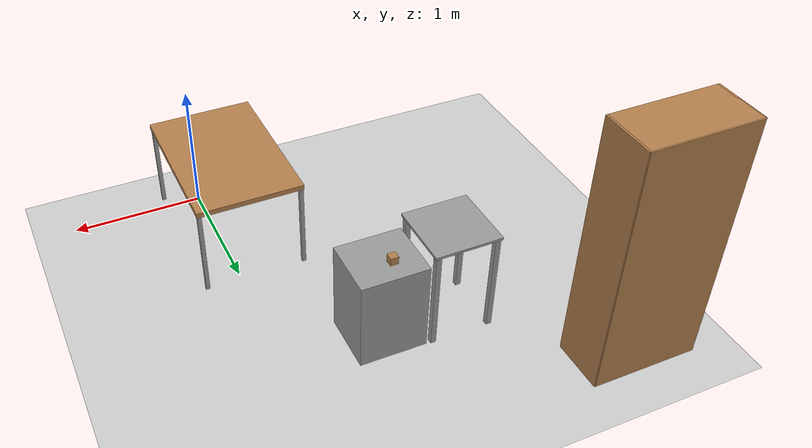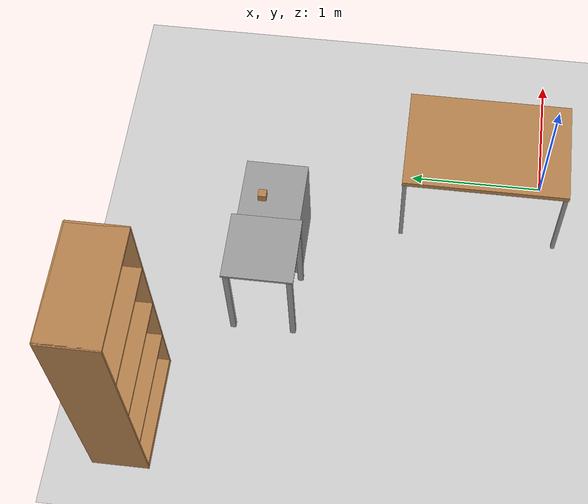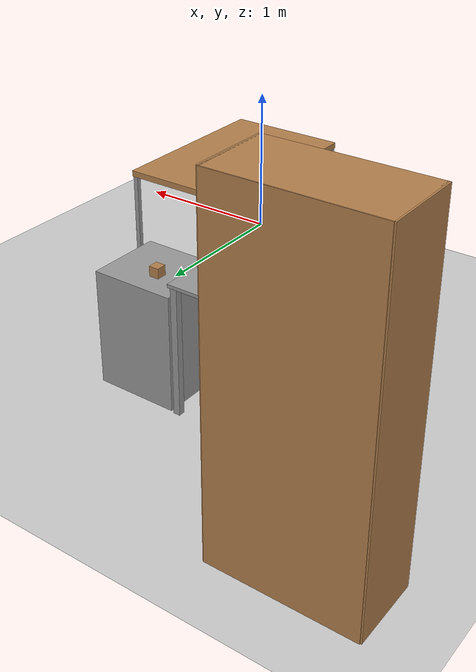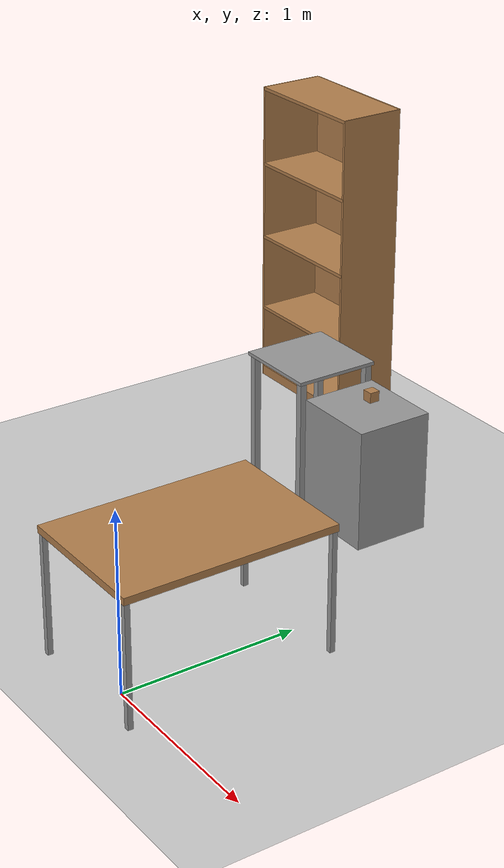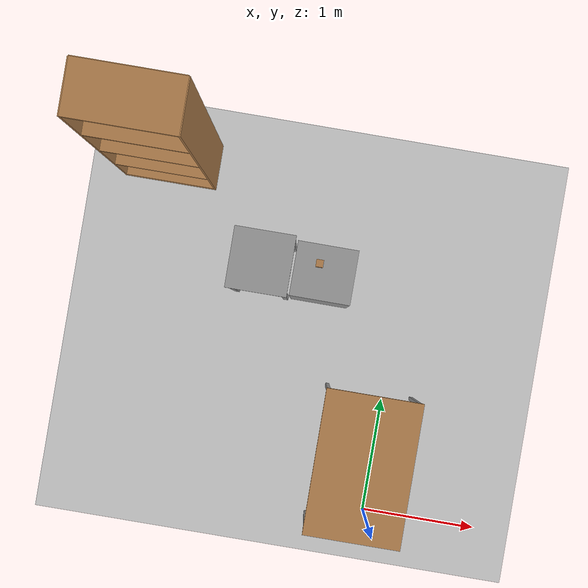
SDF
<sdf version="1.7">
 <world name="default">
  <model name="ground_plane">
   <static>1</static>
   <link name="link">
    <collision name="collision">
     <geometry><plane><normal>0 0 1</normal><size>100 100</size></plane></geometry>
     <surface>
      <contact><collide_bitmask>65535</collide_bitmask></contact>
      <friction><ode><mu>100</mu><mu2>50</mu2></ode></friction>
     </surface>
    </collision>
    <visual name="visual">
     <cast_shadows>0</cast_shadows>
     <geometry><plane><normal>0 0 1</normal><size>100 100</size></plane></geometry>
     <material>
      <script><uri>file://media/materials/scripts/gazebo.material</uri><name>Gazebo/Grey</name></script>
     </material>
    </visual>
   </link>
  </model>
  <model name="table_short_clone_clone">
   <link name="link">
    <inertial>
     <mass>1</mass>
     <inertia><ixx>1</ixx><ixy>0</ixy><ixz>0</ixz><iyy>1</iyy><iyz>0</iyz><izz>1</izz></inertia>
    </inertial>
    <visual name="front_right_leg">
     <pose>0.58 -0.38 0.35 0 -0 0</pose>
     <geometry><box><size>0.03 0.03 0.7</size></box></geometry>
     <material>
      <script><uri>file://media/materials/scripts/gazebo.material</uri><name>Gazebo/Grey</name></script>
      <ambient>0.3 0.3 0.3 1</ambient>
      <diffuse>0.7 0.7 0.7 1</diffuse>
      <specular>0.01 0.01 0.01 1</specular>
      <emissive>0 0 0 1</emissive>
     </material>
    </visual>
    <visual name="back_left_leg">
     <pose>-0.58 0.38 0.35 0 -0 0</pose>
     <geometry><box><size>0.03 0.03 0.7</size></box></geometry>
     <material>
      <script><uri>file://media/materials/scripts/gazebo.material</uri><name>Gazebo/Grey</name></script>
      <ambient>0.3 0.3 0.3 1</ambient>
      <diffuse>0.7 0.7 0.7 1</diffuse>
      <specular>0.01 0.01 0.01 1</specular>
      <emissive>0 0 0 1</emissive>
     </material>
    </visual>
    <visual name="front_left_leg">
     <pose>0.58 0.38 0.35 0 -0 0</pose>
     <geometry><box><size>0.03 0.03 0.7</size></box></geometry>
     <material>
      <script><uri>file://media/materials/scripts/gazebo.material</uri><name>Gazebo/Grey</name></script>
      <ambient>0.3 0.3 0.3 1</ambient>
      <diffuse>0.7 0.7 0.7 1</diffuse>
      <specular>0.01 0.01 0.01 1</specular>
      <emissive>0 0 0 1</emissive>
     </material>
    </visual>
    <visual name="back_right_leg">
     <pose>-0.58 -0.38 0.35 0 -0 0</pose>
     <geometry><box><size>0.03 0.03 0.7</size></box></geometry>
     <material>
      <script><uri>file://media/materials/scripts/gazebo.material</uri><name>Gazebo/Grey</name></script>
      <ambient>0.3 0.3 0.3 1</ambient>
      <diffuse>0.7 0.7 0.7 1</diffuse>
      <specular>0.01 0.01 0.01 1</specular>
      <emissive>0 0 0 1</emissive>
     </material>
    </visual>
    <visual name="visual1">
     <pose>0 0 0.7 0 -0 0</pose>
     <geometry><box><size>1.2 0.8 0.04</size></box></geometry>
     <material>
      <script><uri>file://media/materials/scripts/gazebo.material</uri><name>Gazebo/Wood</name></script>
      <ambient>1 1 1 1</ambient>
      <diffuse>1 1 1 1</diffuse>
      <specular>0.2 0.2 0.2 1</specular>
      <emissive>0 0 0 1</emissive>
     </material>
    </visual>
    <collision name="front_right_leg">
     <pose>0.58 -0.38 0.35 0 -0 0</pose>
     <geometry><box><size>0.03 0.03 0.7</size></box></geometry>
     <surface>
      <friction>
       <ode><mu>1</mu><mu2>1</mu2><fdir1>0 0 0</fdir1><slip1>0</slip1><slip2>0</slip2></ode>
       <torsional>
        <coefficient>1</coefficient>
        <patch_radius>0</patch_radius>
        <surface_radius>0</surface_radius>
        <use_patch_radius>1</use_patch_radius>
        <ode><slip>0</slip></ode>
       </torsional>
      </friction>
      <bounce><restitution_coefficient>0</restitution_coefficient><threshold>1e+06</threshold></bounce>
      <contact>
       <collide_without_contact>0</collide_without_contact>
       <collide_without_contact_bitmask>1</collide_without_contact_bitmask>
       <collide_bitmask>1</collide_bitmask>
       <ode>
        <soft_cfm>0</soft_cfm>
        <soft_erp>0.2</soft_erp>
        <kp>1e+13</kp>
        <kd>1</kd>
        <max_vel>0.01</max_vel>
        <min_depth>0</min_depth>
       </ode>
      </contact>
     </surface>
    </collision>
    <collision name="back_left_leg">
     <pose>-0.58 0.38 0.35 0 -0 0</pose>
     <geometry><box><size>0.03 0.03 0.7</size></box></geometry>
     <surface>
      <friction>
       <ode><mu>1</mu><mu2>1</mu2><fdir1>0 0 0</fdir1><slip1>0</slip1><slip2>0</slip2></ode>
       <torsional>
        <coefficient>1</coefficient>
        <patch_radius>0</patch_radius>
        <surface_radius>0</surface_radius>
        <use_patch_radius>1</use_patch_radius>
        <ode><slip>0</slip></ode>
       </torsional>
      </friction>
      <bounce><restitution_coefficient>0</restitution_coefficient><threshold>1e+06</threshold></bounce>
      <contact>
       <collide_without_contact>0</collide_without_contact>
       <collide_without_contact_bitmask>1</collide_without_contact_bitmask>
       <collide_bitmask>1</collide_bitmask>
       <ode>
        <soft_cfm>0</soft_cfm>
        <soft_erp>0.2</soft_erp>
        <kp>1e+13</kp>
        <kd>1</kd>
        <max_vel>0.01</max_vel>
        <min_depth>0</min_depth>
       </ode>
      </contact>
     </surface>
    </collision>
    <collision name="back_right_leg">
     <pose>-0.58 -0.38 0.35 0 -0 0</pose>
     <geometry><box><size>0.03 0.03 0.7</size></box></geometry>
     <surface>
      <friction>
       <ode><mu>1</mu><mu2>1</mu2><fdir1>0 0 0</fdir1><slip1>0</slip1><slip2>0</slip2></ode>
       <torsional>
        <coefficient>1</coefficient>
        <patch_radius>0</patch_radius>
        <surface_radius>0</surface_radius>
        <use_patch_radius>1</use_patch_radius>
        <ode><slip>0</slip></ode>
       </torsional>
      </friction>
      <bounce><restitution_coefficient>0</restitution_coefficient><threshold>1e+06</threshold></bounce>
      <contact>
       <collide_without_contact>0</collide_without_contact>
       <collide_without_contact_bitmask>1</collide_without_contact_bitmask>
       <collide_bitmask>1</collide_bitmask>
       <ode>
        <soft_cfm>0</soft_cfm>
        <soft_erp>0.2</soft_erp>
        <kp>1e+13</kp>
        <kd>1</kd>
        <max_vel>0.01</max_vel>
        <min_depth>0</min_depth>
       </ode>
      </contact>
     </surface>
    </collision>
    <collision name="surface">
     <pose>0 0 0.7 0 -0 0</pose>
     <geometry><box><size>1.2 0.8 0.04</size></box></geometry>
     <surface>
      <friction>
       <ode><mu>0.6</mu><mu2>0.6</mu2><fdir1>0 0 0</fdir1><slip1>0</slip1><slip2>0</slip2></ode>
       <torsional>
        <coefficient>1</coefficient>
        <patch_radius>0</patch_radius>
        <surface_radius>0</surface_radius>
        <use_patch_radius>1</use_patch_radius>
        <ode><slip>0</slip></ode>
       </torsional>
      </friction>
      <bounce><restitution_coefficient>0</restitution_coefficient><threshold>1e+06</threshold></bounce>
      <contact>
       <collide_without_contact>0</collide_without_contact>
       <collide_without_contact_bitmask>1</collide_without_contact_bitmask>
       <collide_bitmask>1</collide_bitmask>
       <ode>
        <soft_cfm>0</soft_cfm>
        <soft_erp>0.2</soft_erp>
        <kp>1e+13</kp>
        <kd>1</kd>
        <max_vel>0.01</max_vel>
        <min_depth>0</min_depth>
       </ode>
      </contact>
     </surface>
    </collision>
    <collision name="front_left_leg">
     <pose>0.58 0.38 0.35 0 -0 0</pose>
     <geometry><box><size>0.03 0.03 0.699999</size></box></geometry>
     <surface>
      <friction>
       <ode><mu>1</mu><mu2>1</mu2><fdir1>0 0 0</fdir1><slip1>0</slip1><slip2>0</slip2></ode>
       <torsional>
        <coefficient>1</coefficient>
        <patch_radius>0</patch_radius>
        <surface_radius>0</surface_radius>
        <use_patch_radius>1</use_patch_radius>
        <ode><slip>0</slip></ode>
       </torsional>
      </friction>
      <bounce><restitution_coefficient>0</restitution_coefficient><threshold>1e+06</threshold></bounce>
      <contact>
       <collide_without_contact>0</collide_without_contact>
       <collide_without_contact_bitmask>1</collide_without_contact_bitmask>
       <collide_bitmask>1</collide_bitmask>
       <ode>
        <soft_cfm>0</soft_cfm>
        <soft_erp>0.2</soft_erp>
        <kp>1e+13</kp>
        <kd>1</kd>
        <max_vel>0.01</max_vel>
        <min_depth>0</min_depth>
       </ode>
      </contact>
     </surface>
    </collision>
   </link>
   <static>1</static>
   <pose>-0.122111 0.468984 0 0 -0 1.57</pose>
  </model>
  <model name="ur_base_modify">
   <link name="ur_base_top_plate">
    <pose>0 0 0.79 0 -0 0</pose>
    <inertial>
     <mass>1</mass>
     <inertia><ixx>1</ixx><ixy>0</ixy><ixz>0</ixz><iyy>1</iyy><iyz>0</iyz><izz>1</izz></inertia>
    </inertial>
    <visual name="top_plate_visual">
     <geometry><box><size>0.5 0.5 0.02</size></box></geometry>
     <material>
      <script><uri>file://media/materials/scripts/gazebo.material</uri><name>Gazebo/Grey</name></script>
      <ambient>0.18 0.204 0.212 1</ambient>
      <diffuse>0.18 0.204 0.212 1</diffuse>
      <specular>0.18 0.204 0.212 1</specular>
      <emissive>0 0 0 1</emissive>
     </material>
    </visual>
    <collision name="top_plate_collision">
     <geometry><box><size>0.5 0.5 0.02</size></box></geometry>
     <surface>
      <friction>
       <ode><mu>1</mu><mu2>1</mu2><fdir1>0 0 0</fdir1><slip1>0</slip1><slip2>0</slip2></ode>
       <torsional>
        <coefficient>1</coefficient>
        <patch_radius>0</patch_radius>
        <surface_radius>0</surface_radius>
        <use_patch_radius>1</use_patch_radius>
        <ode><slip>0</slip></ode>
       </torsional>
      </friction>
      <bounce><restitution_coefficient>0</restitution_coefficient><threshold>1e+06</threshold></bounce>
      <contact>
       <collide_without_contact>0</collide_without_contact>
       <collide_without_contact_bitmask>1</collide_without_contact_bitmask>
       <collide_bitmask>1</collide_bitmask>
       <ode>
        <soft_cfm>0</soft_cfm>
        <soft_erp>0.2</soft_erp>
        <kp>1e+13</kp>
        <kd>1</kd>
        <max_vel>0.01</max_vel>
        <min_depth>0</min_depth>
       </ode>
      </contact>
     </surface>
    </collision>
   </link>
   <link name="ur_base_leg1">
    <pose>0.22 0.22 0.35 0 -0 0</pose>
    <inertial>
     <mass>1</mass>
     <inertia><ixx>1</ixx><ixy>0</ixy><ixz>0</ixz><iyy>1</iyy><iyz>0</iyz><izz>1</izz></inertia>
    </inertial>
    <visual name="leg1_visual">
     <geometry><box><size>0.04 0.04 0.79</size></box></geometry>
     <material>
      <script><uri>file://media/materials/scripts/gazebo.material</uri><name>Gazebo/Grey</name></script>
      <ambient>0.3 0.3 0.3 1</ambient>
      <diffuse>0.7 0.7 0.7 1</diffuse>
      <specular>0.01 0.01 0.01 1</specular>
      <emissive>0 0 0 1</emissive>
     </material>
     <pose>0 0 0.05 0 -0 0</pose>
    </visual>
   </link>
   <link name="ur_base_leg2">
    <pose>-0.22 0.22 0.35 0 -0 0</pose>
    <inertial>
     <mass>1</mass>
     <inertia><ixx>1</ixx><ixy>0</ixy><ixz>0</ixz><iyy>1</iyy><iyz>0</iyz><izz>1</izz></inertia>
    </inertial>
    <visual name="leg2_visual">
     <geometry><box><size>0.04 0.04 0.79</size></box></geometry>
     <material>
      <script><uri>file://media/materials/scripts/gazebo.material</uri><name>Gazebo/Grey</name></script>
      <ambient>0.3 0.3 0.3 1</ambient>
      <diffuse>0.7 0.7 0.7 1</diffuse>
      <specular>0.01 0.01 0.01 1</specular>
      <emissive>0 0 0 1</emissive>
     </material>
     <pose>0 0 0.05 0 -0 0</pose>
    </visual>
   </link>
   <link name="ur_base_leg3">
    <pose>0.22 -0.22 0.35 0 -0 0</pose>
    <inertial>
     <mass>1</mass>
     <pose>0 0 0.405 0 -0 0</pose>
     <inertia><ixx>1</ixx><ixy>0</ixy><ixz>0</ixz><iyy>1</iyy><iyz>0</iyz><izz>1</izz></inertia>
    </inertial>
    <visual name="leg3_visual">
     <geometry><box><size>0.04 0.04 0.79</size></box></geometry>
     <material>
      <script><uri>file://media/materials/scripts/gazebo.material</uri><name>Gazebo/Grey</name></script>
      <ambient>0.3 0.3 0.3 1</ambient>
      <diffuse>0.7 0.7 0.7 1</diffuse>
      <specular>0.01 0.01 0.01 1</specular>
      <emissive>0 0 0 1</emissive>
     </material>
     <pose>0 0 0.05 0 -0 0</pose>
    </visual>
   </link>
   <link name="ur_base_leg4">
    <pose>-0.22 -0.22 0.35 0 -0 0</pose>
    <inertial>
     <mass>1</mass>
     <inertia><ixx>1</ixx><ixy>0</ixy><ixz>0</ixz><iyy>1</iyy><iyz>0</iyz><izz>1</izz></inertia>
    </inertial>
    <visual name="leg4_visual">
     <geometry><box><size>0.04 0.04 0.79</size></box></geometry>
     <material>
      <script><uri>file://media/materials/scripts/gazebo.material</uri><name>Gazebo/Grey</name></script>
      <ambient>0.3 0.3 0.3 1</ambient>
      <diffuse>0.7 0.7 0.7 1</diffuse>
      <specular>0.01 0.01 0.01 1</specular>
      <emissive>0 0 0 1</emissive>
     </material>
     <pose>0 0 0.05 0 -0 0</pose>
    </visual>
   </link>
   <static>1</static>
   <pose>-1.21102 1.97822 0 0 -0 0</pose>
  </model>
  <model name="test_box">
   <link name="link">
    <inertial>
     <inertia><ixx>1</ixx><ixy>0</ixy><ixz>0</ixz><iyy>1</iyy><iyz>0</iyz><izz>1</izz></inertia>
     <mass>1</mass>
    </inertial>
    <visual name="visual">
     <geometry><box><size>0.5 0.45 0.7</size></box></geometry>
     <material>
      <script><name>Gazebo/Grey</name><uri>file://media/materials/scripts/gazebo.material</uri></script>
      <ambient>0.533 0.541 0.522 1</ambient>
      <diffuse>0.333 0.341 0.325 1</diffuse>
      <specular>0.18 0.204 0.212 1</specular>
      <emissive>0 0 0 1</emissive>
     </material>
    </visual>
    <collision name="collision">
     <geometry><box><size>0.5 0.45 0.7</size></box></geometry>
     <surface>
      <friction>
       <ode><mu>1</mu><mu2>1</mu2><fdir1>0 0 0</fdir1><slip1>0</slip1><slip2>0</slip2></ode>
       <torsional>
        <coefficient>1</coefficient>
        <patch_radius>0</patch_radius>
        <surface_radius>0</surface_radius>
        <use_patch_radius>1</use_patch_radius>
        <ode><slip>0</slip></ode>
       </torsional>
      </friction>
      <bounce><restitution_coefficient>0</restitution_coefficient><threshold>1e+06</threshold></bounce>
      <contact>
       <collide_without_contact>0</collide_without_contact>
       <collide_without_contact_bitmask>1</collide_without_contact_bitmask>
       <collide_bitmask>1</collide_bitmask>
       <ode>
        <soft_cfm>0</soft_cfm>
        <soft_erp>0.2</soft_erp>
        <kp>1e+13</kp>
        <kd>1</kd>
        <max_vel>0.01</max_vel>
        <min_depth>0</min_depth>
       </ode>
      </contact>
     </surface>
    </collision>
   </link>
   <static>0</static>
   <pose>-0.696094 1.97858 0.35 -1e-06 1e-06 -0.004284</pose>
  </model>
  <model name="cube_6x6x6_">
   <link name="link">
    <pose>-0 -0 0.02 0 -0 0</pose>
    <inertial>
     <mass>0.0565</mass>
     <inertia>
      <ixx>2.354e-05</ixx>
      <ixy>0</ixy>
      <ixz>0</ixz>
      <iyy>2.354e-05</iyy>
      <iyz>0</iyz>
      <izz>2.354e-05</izz>
     </inertia>
    </inertial>
    <visual name="visual">
     <geometry><box><size>0.06 0.06 0.06</size></box></geometry>
     <material>
      <script><uri>file://media/materials/scripts/gazebo.material</uri><name>Gazebo/Wood</name></script>
      <ambient>1 1 1 1</ambient>
      <diffuse>1 1 1 1</diffuse>
      <specular>0.2 0.2 0.2 1</specular>
      <emissive>0 0 0 1</emissive>
     </material>
    </visual>
    <collision name="collision">
     <geometry><box><size>0.06 0.06 0.06</size></box></geometry>
     <surface>
      <friction>
       <ode><mu>1</mu><mu2>1</mu2><fdir1>0 0 0</fdir1><slip1>0</slip1><slip2>0</slip2></ode>
       <torsional>
        <coefficient>1</coefficient>
        <patch_radius>0</patch_radius>
        <surface_radius>0.05</surface_radius>
        <use_patch_radius>0</use_patch_radius>
        <ode><slip>0</slip></ode>
       </torsional>
      </friction>
      <bounce><restitution_coefficient>0</restitution_coefficient><threshold>1e+06</threshold></bounce>
      <contact>
       <collide_without_contact>0</collide_without_contact>
       <collide_without_contact_bitmask>1</collide_without_contact_bitmask>
       <collide_bitmask>1</collide_bitmask>
       <ode>
        <soft_cfm>0</soft_cfm>
        <soft_erp>0.2</soft_erp>
        <kp>100000</kp>
        <kd>1</kd>
        <max_vel>1</max_vel>
        <min_depth>0.001</min_depth>
       </ode>
      </contact>
     </surface>
    </collision>
   </link>
   <static>0</static>
   <pose>-0.743503 2.045 0.709998 7e-06 -8e-06 0.00359</pose>
  </model>
  <model name="bookshelf_1_9m">
   <link name="link">
    <inertial>
     <mass>0.772235</mass>
     <inertia>
      <ixx>0.0103222</ixx>
      <ixy>0</ixy>
      <ixz>0</ixz>
      <iyy>0.0269147</iyy>
      <iyz>0</iyz>
      <izz>0.0371854</izz>
     </inertia>
    </inertial>
    <pose>0.146048 0 0 0 -0 0</pose>
    <visual name="ModelPreview_1_link_visual_8">
     <pose>0 -0.195 0.465 0 -0 0</pose>
     <geometry><box><size>0.8 0.4 0.02</size></box></geometry>
     <material>
      <script><uri>file://media/materials/scripts/gazebo.material</uri><name>Gazebo/Wood</name></script>
      <ambient>1 1 1 1</ambient>
      <diffuse>1 1 1 1</diffuse>
      <specular>0.2 0.2 0.2 1</specular>
      <emissive>0 0 0 1</emissive>
     </material>
    </visual>
    <visual name="visual6">
     <pose>0 -0.195 1.89 0 -0 0</pose>
     <geometry><box><size>0.8 0.4 0.02</size></box></geometry>
     <material>
      <script><uri>file://media/materials/scripts/gazebo.material</uri><name>Gazebo/Wood</name></script>
      <ambient>1 1 1 1</ambient>
      <diffuse>1 1 1 1</diffuse>
      <specular>0.2 0.2 0.2 1</specular>
      <emissive>0 0 0 1</emissive>
     </material>
    </visual>
    <visual name="visual5">
     <pose>0 -0.195 1.415 0 -0 0</pose>
     <geometry><box><size>0.8 0.4 0.02</size></box></geometry>
     <material>
      <script><uri>file://media/materials/scripts/gazebo.material</uri><name>Gazebo/Wood</name></script>
      <ambient>1 1 1 1</ambient>
      <diffuse>1 1 1 1</diffuse>
      <specular>0.2 0.2 0.2 1</specular>
      <emissive>0 0 0 1</emissive>
     </material>
    </visual>
    <visual name="visual7">
     <pose>0 -0.195 0.94 0 -0 0</pose>
     <geometry><box><size>0.8 0.4 0.02</size></box></geometry>
     <material>
      <script><uri>file://media/materials/scripts/gazebo.material</uri><name>Gazebo/Wood</name></script>
      <ambient>1 1 1 1</ambient>
      <diffuse>1 1 1 1</diffuse>
      <specular>0.2 0.2 0.2 1</specular>
      <emissive>0 0 0 1</emissive>
     </material>
    </visual>
    <visual name="visual4">
     <pose>0 -0.195 0.03 0 -0 0</pose>
     <geometry><box><size>0.8 0.4 0.06</size></box></geometry>
     <material>
      <script><uri>file://media/materials/scripts/gazebo.material</uri><name>Gazebo/Wood</name></script>
      <ambient>1 1 1 1</ambient>
      <diffuse>1 1 1 1</diffuse>
      <specular>0.2 0.2 0.2 1</specular>
      <emissive>0 0 0 1</emissive>
     </material>
    </visual>
    <visual name="visual2">
     <pose>0.4 -0.195 0.95 0 -0 0</pose>
     <geometry><box><size>0.015482 0.4 1.9</size></box></geometry>
     <material>
      <script><uri>file://media/materials/scripts/gazebo.material</uri><name>Gazebo/Wood</name></script>
      <ambient>1 1 1 1</ambient>
      <diffuse>1 1 1 1</diffuse>
      <specular>0.2 0.2 0.2 1</specular>
      <emissive>0 0 0 1</emissive>
     </material>
    </visual>
    <visual name="visual1">
     <pose>0 0.005 0.95 0 -0 0</pose>
     <geometry><box><size>0.8 0.010399 1.9</size></box></geometry>
     <material>
      <script><uri>file://media/materials/scripts/gazebo.material</uri><name>Gazebo/Wood</name></script>
      <lighting>0</lighting>
      <emissive>0 0 0 1</emissive>
     </material>
    </visual>
    <visual name="visual3">
     <pose>-0.4 -0.195 0.95 0 -0 0</pose>
     <geometry><box><size>0.015482 0.4 1.9</size></box></geometry>
     <material>
      <script><uri>file://media/materials/scripts/gazebo.material</uri><name>Gazebo/Wood</name></script>
      <ambient>1 1 1 1</ambient>
      <diffuse>1 1 1 1</diffuse>
      <specular>0.2 0.2 0.2 1</specular>
      <emissive>0 0 0 1</emissive>
     </material>
    </visual>
    <collision name="left_side">
     <pose>0.25 -0.195 0.6 0 -0 0</pose>
     <geometry><box><size>0.015482 0.4 1.2</size></box></geometry>
     <surface>
      <friction>
       <ode><mu>1</mu><mu2>1</mu2><fdir1>0 0 0</fdir1><slip1>0</slip1><slip2>0</slip2></ode>
       <torsional>
        <coefficient>1</coefficient>
        <patch_radius>0</patch_radius>
        <surface_radius>0</surface_radius>
        <use_patch_radius>1</use_patch_radius>
        <ode><slip>0</slip></ode>
       </torsional>
      </friction>
      <bounce><restitution_coefficient>0</restitution_coefficient><threshold>1e+06</threshold></bounce>
      <contact>
       <collide_without_contact>0</collide_without_contact>
       <collide_without_contact_bitmask>1</collide_without_contact_bitmask>
       <collide_bitmask>1</collide_bitmask>
       <ode>
        <soft_cfm>0</soft_cfm>
        <soft_erp>0.2</soft_erp>
        <kp>1e+13</kp>
        <kd>1</kd>
        <max_vel>0.01</max_vel>
        <min_depth>0</min_depth>
       </ode>
      </contact>
     </surface>
    </collision>
    <collision name="right_side">
     <pose>-0.25 -0.195 0.6 0 -0 0</pose>
     <geometry><box><size>0.015482 0.4 1.2</size></box></geometry>
     <surface>
      <friction>
       <ode><mu>1</mu><mu2>1</mu2><fdir1>0 0 0</fdir1><slip1>0</slip1><slip2>0</slip2></ode>
       <torsional>
        <coefficient>1</coefficient>
        <patch_radius>0</patch_radius>
        <surface_radius>0</surface_radius>
        <use_patch_radius>1</use_patch_radius>
        <ode><slip>0</slip></ode>
       </torsional>
      </friction>
      <bounce><restitution_coefficient>0</restitution_coefficient><threshold>1e+06</threshold></bounce>
      <contact>
       <collide_without_contact>0</collide_without_contact>
       <collide_without_contact_bitmask>1</collide_without_contact_bitmask>
       <collide_bitmask>1</collide_bitmask>
       <ode>
        <soft_cfm>0</soft_cfm>
        <soft_erp>0.2</soft_erp>
        <kp>1e+13</kp>
        <kd>1</kd>
        <max_vel>0.01</max_vel>
        <min_depth>0</min_depth>
       </ode>
      </contact>
     </surface>
    </collision>
    <collision name="bottom">
     <pose>0 -0.195 0.03 0 -0 0</pose>
     <geometry><box><size>0.5 0.4 0.06</size></box></geometry>
     <surface>
      <friction>
       <ode><mu>1</mu><mu2>1</mu2><fdir1>0 0 0</fdir1><slip1>0</slip1><slip2>0</slip2></ode>
       <torsional>
        <coefficient>1</coefficient>
        <patch_radius>0</patch_radius>
        <surface_radius>0</surface_radius>
        <use_patch_radius>1</use_patch_radius>
        <ode><slip>0</slip></ode>
       </torsional>
      </friction>
      <bounce><restitution_coefficient>0</restitution_coefficient><threshold>1e+06</threshold></bounce>
      <contact>
       <collide_without_contact>0</collide_without_contact>
       <collide_without_contact_bitmask>1</collide_without_contact_bitmask>
       <collide_bitmask>1</collide_bitmask>
       <ode>
        <soft_cfm>0</soft_cfm>
        <soft_erp>0.2</soft_erp>
        <kp>1e+13</kp>
        <kd>1</kd>
        <max_vel>0.01</max_vel>
        <min_depth>0</min_depth>
       </ode>
      </contact>
     </surface>
    </collision>
    <collision name="low_shelf">
     <pose>0 -0.195 0.43 0 -0 0</pose>
     <geometry><box><size>0.5 0.4 0.02</size></box></geometry>
     <surface>
      <friction>
       <ode><mu>1</mu><mu2>1</mu2><fdir1>0 0 0</fdir1><slip1>0</slip1><slip2>0</slip2></ode>
       <torsional>
        <coefficient>1</coefficient>
        <patch_radius>0</patch_radius>
        <surface_radius>0</surface_radius>
        <use_patch_radius>1</use_patch_radius>
        <ode><slip>0</slip></ode>
       </torsional>
      </friction>
      <bounce><restitution_coefficient>0</restitution_coefficient><threshold>1e+06</threshold></bounce>
      <contact>
       <collide_without_contact>0</collide_without_contact>
       <collide_without_contact_bitmask>1</collide_without_contact_bitmask>
       <collide_bitmask>1</collide_bitmask>
       <ode>
        <soft_cfm>0</soft_cfm>
        <soft_erp>0.2</soft_erp>
        <kp>1e+13</kp>
        <kd>1</kd>
        <max_vel>0.01</max_vel>
        <min_depth>0</min_depth>
       </ode>
      </contact>
     </surface>
    </collision>
    <collision name="high_shelf">
     <pose>0 -0.195 0.8 0 -0 0</pose>
     <geometry><box><size>0.5 0.4 0.02</size></box></geometry>
     <surface>
      <friction>
       <ode><mu>1</mu><mu2>1</mu2><fdir1>0 0 0</fdir1><slip1>0</slip1><slip2>0</slip2></ode>
       <torsional>
        <coefficient>1</coefficient>
        <patch_radius>0</patch_radius>
        <surface_radius>0</surface_radius>
        <use_patch_radius>1</use_patch_radius>
        <ode><slip>0</slip></ode>
       </torsional>
      </friction>
      <bounce><restitution_coefficient>0</restitution_coefficient><threshold>1e+06</threshold></bounce>
      <contact>
       <collide_without_contact>0</collide_without_contact>
       <collide_without_contact_bitmask>1</collide_without_contact_bitmask>
       <collide_bitmask>1</collide_bitmask>
       <ode>
        <soft_cfm>0</soft_cfm>
        <soft_erp>0.2</soft_erp>
        <kp>1e+13</kp>
        <kd>1</kd>
        <max_vel>0.01</max_vel>
        <min_depth>0</min_depth>
       </ode>
      </contact>
     </surface>
    </collision>
    <collision name="top">
     <pose>0 -0.195 1.19 0 -0 0</pose>
     <geometry><box><size>0.5 0.4 0.02</size></box></geometry>
     <surface>
      <friction>
       <ode><mu>1</mu><mu2>1</mu2><fdir1>0 0 0</fdir1><slip1>0</slip1><slip2>0</slip2></ode>
       <torsional>
        <coefficient>1</coefficient>
        <patch_radius>0</patch_radius>
        <surface_radius>0</surface_radius>
        <use_patch_radius>1</use_patch_radius>
        <ode><slip>0</slip></ode>
       </torsional>
      </friction>
      <bounce><restitution_coefficient>0</restitution_coefficient><threshold>1e+06</threshold></bounce>
      <contact>
       <collide_without_contact>0</collide_without_contact>
       <collide_without_contact_bitmask>1</collide_without_contact_bitmask>
       <collide_bitmask>1</collide_bitmask>
       <ode>
        <soft_cfm>0</soft_cfm>
        <soft_erp>0.2</soft_erp>
        <kp>1e+13</kp>
        <kd>1</kd>
        <max_vel>0.01</max_vel>
        <min_depth>0</min_depth>
       </ode>
      </contact>
     </surface>
    </collision>
    <collision name="back">
     <pose>0 0.005 0.6 0 -0 0</pose>
     <geometry><box><size>0.5 0.010399 1.2</size></box></geometry>
     <surface>
      <friction>
       <ode><mu>1</mu><mu2>1</mu2><fdir1>0 0 0</fdir1><slip1>0</slip1><slip2>0</slip2></ode>
       <torsional>
        <coefficient>1</coefficient>
        <patch_radius>0</patch_radius>
        <surface_radius>0</surface_radius>
        <use_patch_radius>1</use_patch_radius>
        <ode><slip>0</slip></ode>
       </torsional>
      </friction>
      <bounce><restitution_coefficient>0</restitution_coefficient><threshold>1e+06</threshold></bounce>
      <contact>
       <collide_without_contact>0</collide_without_contact>
       <collide_without_contact_bitmask>1</collide_without_contact_bitmask>
       <collide_bitmask>1</collide_bitmask>
       <ode>
        <soft_cfm>0</soft_cfm>
        <soft_erp>0.2</soft_erp>
        <kp>1e+13</kp>
        <kd>1</kd>
        <max_vel>0.01</max_vel>
        <min_depth>0</min_depth>
       </ode>
      </contact>
     </surface>
    </collision>
   </link>
   <static>1</static>
   <pose>-2.32634 3.00025 0 0 -0 0</pose>
  </model>
 </world>
</sdf>
